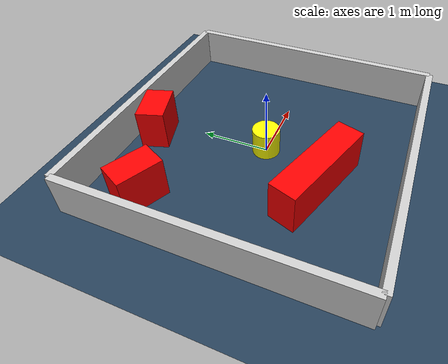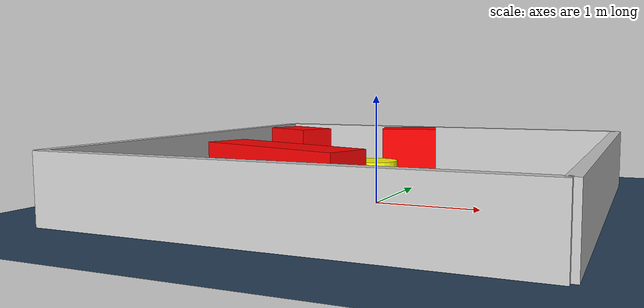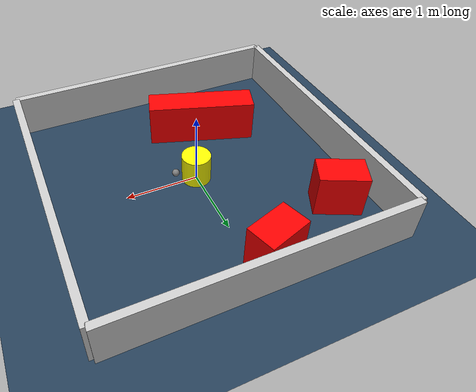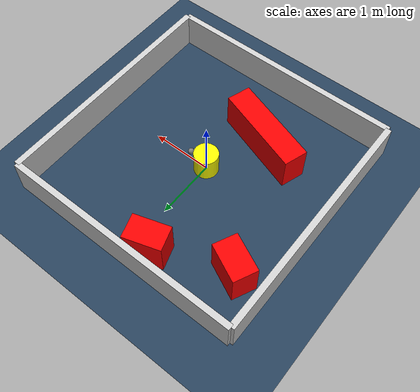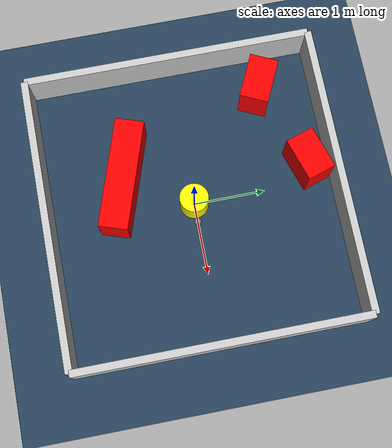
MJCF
<?xml version="1.0" ?>
<mujoco model="generated_environment">
  <option timestep="0.01" integrator="RK4" cone="elliptic"/>
  <default>
    <geom density="1"/>
  </default>
  <asset>
    <texture builtin="gradient" height="3072" rgb1="0.3 0.5 0.7" rgb2="0 0 0" type="skybox" width="512"/>
    <texture builtin="checker" height="300" mark="edge" markrgb="0.8 0.8 0.8" name="groundplane" rgb1="0.2 0.3 0.4" rgb2="0.1 0.2 0.3" type="2d" width="300"/>
    <material name="groundplane" reflectance="0.2" texrepeat="5 5" texture="groundplane" texuniform="true"/>
    <material name="robot" rgba="0.0 1.0 0.0 1"/>
  </asset>
  <worldbody>
    <light dir="0 0 -1" directional="true" pos="0 0 1.5"/>
    <geom condim="4" friction="1.0 0.005 0.001" material="groundplane" name="floor" size="0 0 0.05" type="plane"/>
    <body name="walls">
      <geom name="wall_1" condim="4" pos="-2.0 0.0 0.3" rgba="0.800000011920929 0.800000011920929 0.800000011920929 1.0" size="0.05 2.0 0.3" type="box"/>
      <geom name="wall_2" condim="4" pos="2.0 0.0 0.3" rgba="0.800000011920929 0.800000011920929 0.800000011920929 1.0" size="0.05 2.0 0.3" type="box"/>
      <geom name="wall_3" condim="4" pos="0.0 -2.0 0.3" rgba="0.800000011920929 0.800000011920929 0.800000011920929 1.0" size="2.0 0.05 0.3" type="box"/>
      <geom name="wall_4" condim="4" pos="0.0 2.0 0.3" rgba="0.800000011920929 0.800000011920929 0.800000011920929 1.0" size="2.0 0.05 0.3" type="box"/>
    </body>
    <body name="robot">
      <joint name="joint_x" type="slide" pos="0 0 0" axis="1 0 0"/>
      <joint name="joint_y" type="slide" pos="0 0 0" axis="0 1 0"/>
      <geom name="robot" type="sphere" pos="0.3 0.0 0.2" size="0.05" mass="5." friction="1.0 0.005 0.0001" condim="4" rgba="0.5 0.5 0.5 1.0"/>
      <site name="sensor_ball"/>
    </body>
    <body name="obstacle_movable_1">
      <geom name="obstacle_movable_1" condim="4" pos="0.0 0.0 0.2" euler="0 0 0.0" friction="1.0 0.005 0.001" rgba="1.0 1.0 0.0 1.0" size="0.2 0.2 0.0" type="cylinder" mass="0.1"/>
      <joint type="free"/>
    </body>
    <body name="obstacle_2_static">
      <geom name="obstacle_2_static" condim="4" pos="-0.47119608886617115 -0.9037368357255477 0.3" euler="0 0 341.6495298559769" friction="1.0 0.005 0.001" rgba="1 0 0 1" size="0.7567481034011099 0.2 0.3" type="box"/>
    </body>
    <body name="obstacle_3_static">
      <geom name="obstacle_3_static" condim="4" pos="-0.26136043661790187 1.6512173548767672 0.3" euler="0 0 197.69721056291456" friction="1.0 0.005 0.001" rgba="1 0 0 1" size="0.3043271706701536 0.2 0.3" type="box"/>
    </body>
    <body name="obstacle_4_static">
      <geom name="obstacle_4_static" condim="4" pos="-1.4528337135920701 1.1924318242533818 0.3" euler="0 0 154.635039143504" friction="1.0 0.005 0.001" rgba="1 0 0 1" size="0.313411552846108 0.2 0.3" type="box"/>
    </body>
  </worldbody>
  <actuator>
    <motor name="actuator_x" joint="joint_x" gear="1" ctrlrange="-1 1"/>
    <motor name="actuator_y" joint="joint_y" gear="1" ctrlrange="-1 1"/>
  </actuator>
</mujoco>
